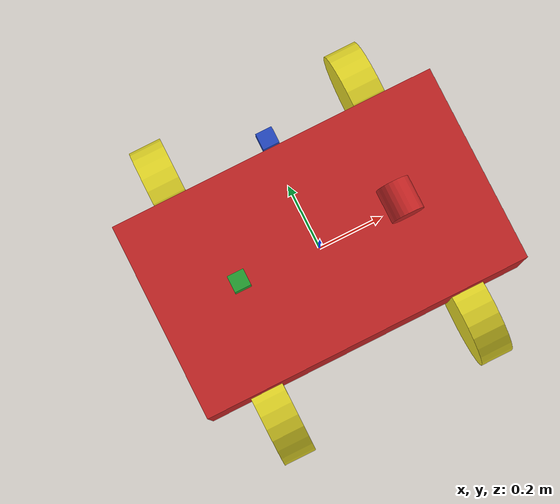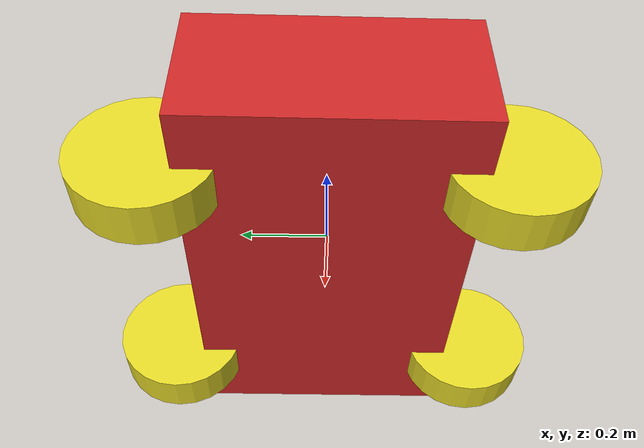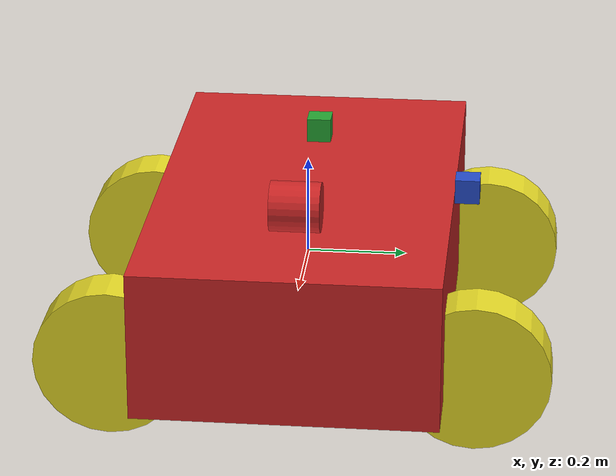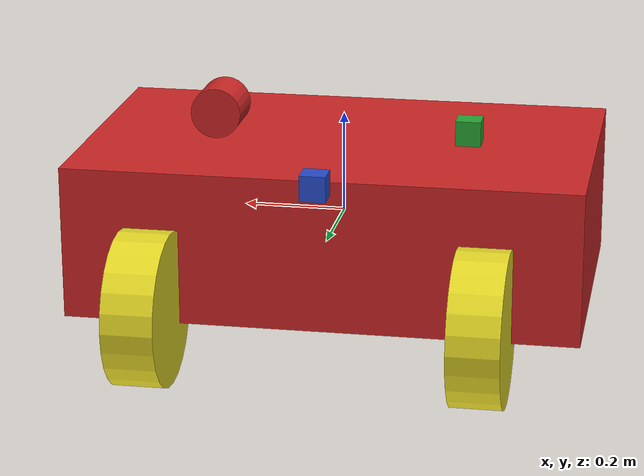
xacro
<?xml version="1.0"?>
<robot xmlns:xacro="http://www.ros.org/wiki/xacro" name="four_wheel_robot">

  <!-- Body dimensions -->
  <xacro:property name="body_link_x_dim" value="1"/>
  <xacro:property name="body_link_y_dim" value="0.6"/>
  <xacro:property name="body_link_z_dim" value="0.3"/>

  <!-- Wheel dimensions -->
  <xacro:property name="wheel_link_radius" value="0.15"/>
  <xacro:property name="wheel_link_length" value="0.1"/>
  <xacro:property name="wheel_link_z_location" value="-0.1"/>

  <!-- Sensor dimensions -->
  <xacro:property name="sensor_side" value="0.05"/>

  <!-- Material density -->
  <xacro:property name="body_density" value="2710.0"/>
  <xacro:property name="wheel_density" value="2710.0"/>

  <!-- PI Constant -->
  <xacro:property name="pi_const" value="3.14159265"/>

  <!-- Robot body and wheel mass -->
  <xacro:property name="sensor_mass" value="0.5"/>
  <xacro:property name="body_mass" value="${body_density * body_link_x_dim * body_link_y_dim * body_link_z_dim}"/>
  <xacro:property name="wheel_mass" value="${wheel_density * pi_const * wheel_link_radius * wheel_link_radius * wheel_link_length}"/>

  <!-- Moments of inertia of the wheel -->
  <xacro:property name="Iz_wheel" value="${0.5 * wheel_mass * wheel_link_radius * wheel_link_radius}"/>
  <xacro:property name="I_wheel" value="${(1.0/12.0) * wheel_mass * (3.0 * wheel_link_radius * wheel_link_radius + wheel_link_length * wheel_link_length)}"/>

  <!-- Gazebo definitions -->
  <xacro:include filename="$(find robot_model_pkg)/urdf/robot.gazebo"/>

  <!-- Dummy link -->
  <link name="dummy"/>

  <!-- Body link -->
  <link name="body_link">
    <visual>
      <geometry>
        <box size="${body_link_x_dim} ${body_link_y_dim} ${body_link_z_dim}"/>
      </geometry>
      <origin rpy="0 0 0" xyz="0 0 0"/>
    </visual>

    <collision>
      <geometry>
        <box size="${body_link_x_dim} ${body_link_y_dim} ${body_link_z_dim}"/>
      </geometry>
      <origin rpy="0 0 0" xyz="0 0 0"/>
    </collision>

    <inertial>
      <origin rpy="0 0 0" xyz="0 0 0"/>
      <mass value="${body_mass}"/>
      <inertia
        ixx="${(1.0/12.0)*body_mass*(body_link_y_dim*body_link_y_dim + body_link_z_dim*body_link_z_dim)}"
        ixy="0" ixz="0"
        iyy="${(1.0/12.0)*body_mass*(body_link_x_dim*body_link_x_dim + body_link_z_dim*body_link_z_dim)}"
        iyz="0"
        izz="${(1.0/12.0)*body_mass*(body_link_y_dim*body_link_y_dim + body_link_x_dim*body_link_x_dim)}"/>
    </inertial>
  </link>

  <!-- Fixed joint between dummy and body -->
  <joint name="dummy_joint" type="fixed">
    <parent link="dummy"/>
    <child link="body_link"/>
  </joint>

  <!-- Wheel macro -->
  <xacro:macro name="wheel" params="name x y z joint_type">
    <link name="${name}">
      <visual>
        <geometry>
          <cylinder radius="${wheel_link_radius}" length="${wheel_link_length}"/>
        </geometry>
        <origin rpy="0 1.5707 0" xyz="0 0 0"/>
      </visual>

      <collision>
        <geometry>
          <cylinder radius="${wheel_link_radius}" length="${wheel_link_length}"/>
        </geometry>
        <origin rpy="0 1.5707 0" xyz="0 0 0"/>
      </collision>

      <inertial>
        <origin rpy="0 0 0" xyz="0 0 0"/>
        <mass value="${wheel_mass}"/>
        <inertia
          ixx="${I_wheel}" ixy="0.0" ixz="0.0"
          iyy="${I_wheel}" iyz="0.0"
          izz="${Iz_wheel}"/>
      </inertial>
    </link>

    <joint name="${name}_joint" type="${joint_type}">
      <parent link="body_link"/>
      <child link="${name}"/>
      <origin xyz="${x} ${y} ${z}" rpy="0 0 0"/>
      <axis xyz="0 1 0"/>
      <limit effort="1000" velocity="1000"/>
      <dynamics damping="1.0" friction="1.0"/>
    </joint>
  </xacro:macro>

  <!-- Instantiate wheels -->
  <xacro:wheel name="rear_right_wheel"  x="${-body_link_x_dim/2 + 1.2*wheel_link_radius}" y="${-body_link_y_dim/2 - 1.2*wheel_link_length/2}" z="${wheel_link_z_location}" joint_type="continuous"/>
  <xacro:wheel name="rear_left_wheel"   x="${-body_link_x_dim/2 + 1.2*wheel_link_radius}" y="${body_link_y_dim/2 + 1.2*wheel_link_length/2}" z="${wheel_link_z_location}" joint_type="continuous"/>
  <xacro:wheel name="front_right_wheel" x="${body_link_x_dim/2 - 1.2*wheel_link_radius}"  y="${-body_link_y_dim/2 - 1.2*wheel_link_length/2}" z="${wheel_link_z_location}" joint_type="continuous"/>
  <xacro:wheel name="front_left_wheel"  x="${body_link_x_dim/2 - 1.2*wheel_link_radius}"  y="${body_link_y_dim/2 + 1.2*wheel_link_length/2}"  z="${wheel_link_z_location}" joint_type="continuous"/>

  <!-- Camera -->
  <link name="camera_link">
    <visual>
      <geometry><box size="${sensor_side} ${sensor_side} ${sensor_side}"/></geometry>
      <origin rpy="0 0 0" xyz="0 0 0" />
    </visual>
    <collision>
      <geometry><box size="${sensor_side} ${sensor_side} ${sensor_side}"/></geometry>
      <origin rpy="0 0 0" xyz="0 0 0" />
    </collision>
    <inertial>
      <origin rpy="0 0 0" xyz="0 0 0"/>
      <mass value="${sensor_mass}"/>
      <inertia
        ixx="1e-6" ixy="0.0" ixz="0.0"
        iyy="1e-6" iyz="0.0"
        izz="1e-6"/>
    </inertial>
  </link>

  <joint name="camera_joint" type="fixed">
    <parent link="body_link"/>
    <child link="camera_link"/>
    <origin xyz="${-body_link_x_dim/4} 0 ${body_link_z_dim/2 + sensor_side/2}"/>
    <axis xyz="0 1 0" />
  </joint>

  <!-- Sonar -->
  <link name="sonar_link">
    <visual>
      <geometry>
        <box size="${sensor_side} ${sensor_side} ${sensor_side}"/>
      </geometry>
      <origin xyz="0 0 0" rpy="0 0 0"/>
    </visual>
    <collision>
      <geometry>
        <box size="${sensor_side} ${sensor_side} ${sensor_side}"/>
      </geometry>
      <origin xyz="0 0 0" rpy="0 0 0"/>
    </collision>
    <inertial>
      <origin xyz="0 0 0" rpy="0 0 0"/>
      <mass value="${sensor_mass}"/>
      <inertia ixx="1e-6" ixy="0" ixz="0"
               iyy="1e-6" iyz="0"
               izz="1e-6"/>
    </inertial>
  </link>

  <joint name="sonar_joint" type="fixed">
    <parent link="body_link"/>
    <child link="sonar_link"/>
    <origin xyz="0 ${body_link_y_dim/2 + sensor_side/2} ${body_link_z_dim/2}" rpy="0 0 0"/>
  </joint>

  <!-- Lidar -->
  <link name="lidar_link">
    <visual>
      <geometry>
        <cylinder radius="0.05" length="0.1"/>
      </geometry>
      <origin xyz="0 0 0" rpy="1.5707 0 0"/>
    </visual>
    <collision>
      <geometry>
        <cylinder radius="0.05" length="0.1"/>
      </geometry>
      <origin xyz="0 0 0" rpy="1.5707 0 0"/>
    </collision>
    <inertial>
      <origin xyz="0 0 0" rpy="0 0 0"/>
      <mass value="${sensor_mass}"/>
      <inertia ixx="1e-6" ixy="0" ixz="0"
               iyy="1e-6" iyz="0"
               izz="1e-6"/>
    </inertial>
  </link>

  <joint name="lidar_joint" type="fixed">
    <parent link="body_link"/>
    <child link="lidar_link"/>
    <origin xyz="${body_link_x_dim/4} 0 ${body_link_z_dim/2 + 0.05}" rpy="0 0 0"/>
  </joint>

</robot>
